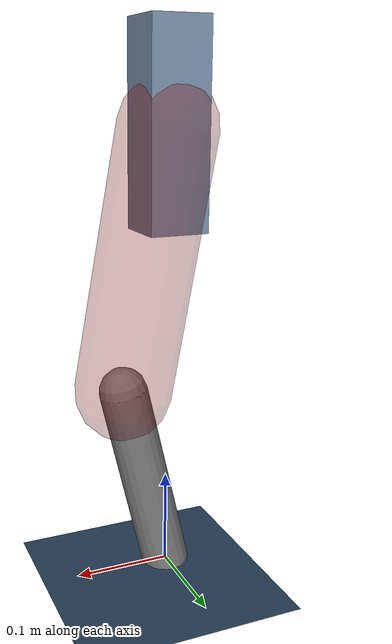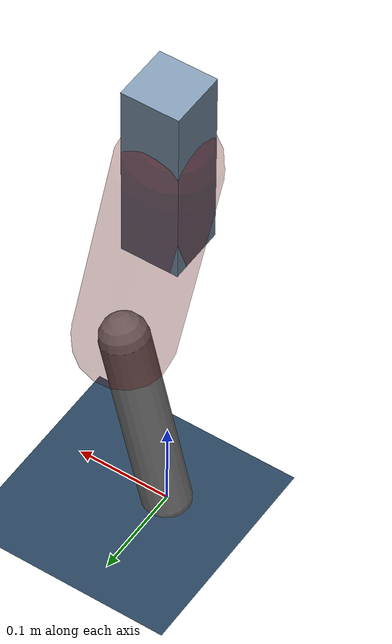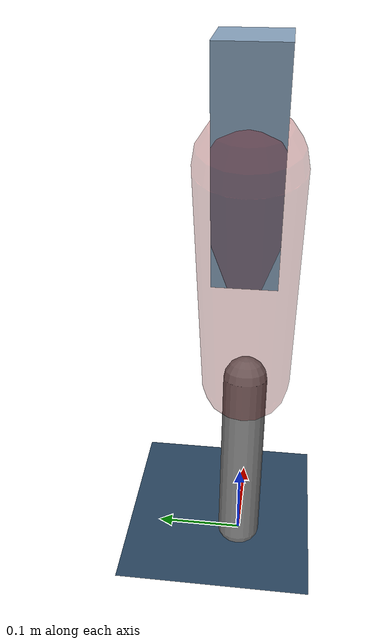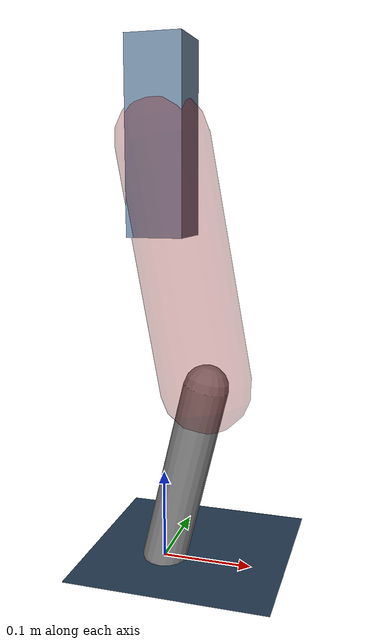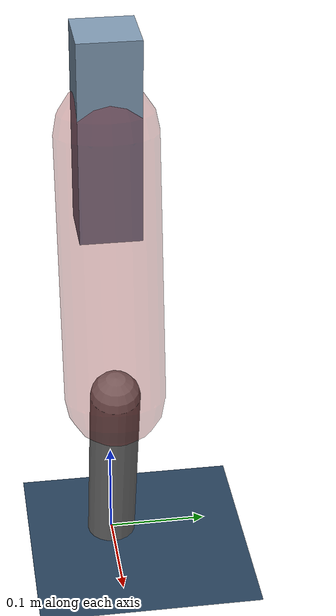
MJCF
<mujoco model="Hopper2D">
	<compiler inertiafromgeom="true" angle="radian" />
	<option timestep="0.001" integrator="implicit" cone="elliptic" solver="Newton" tolerance="1e-10" />

	<default>
		<geom contype="1" conaffinity="1" condim="3" friction="2 0.005 0.0001" solref="0.005 1" />
		<joint limited="true" damping="0.1" />
	</default>

	<asset>
		<texture name="skybox" type="skybox" builtin="gradient" rgb1=".4 .6 .8" rgb2="0 0 0" width="800" height="800" />
		<texture name="grid" type="2d" builtin="checker" rgb1=".1 .2 .3" rgb2=".2 .3 .4" width="300" height="300" mark="edge" markrgb=".2 .3 .4" />
		<material name="ground" texture="grid" texrepeat="1 1" texuniform="true" reflectance="0.1" />
		<material name="leg" rgba="0.5 0.6 0.7 1" />
	</asset>

	<worldbody>

		<geom name="floor" type="plane" size="5 5 0.25" material="ground" />

		<light directional="false" diffuse="0.8 0.8 0.8" specular="0.3 0.3 0.3" pos="0 0 2" dir="0 0 -1" />
		<light mode="targetbodycom" target="base" directional="false" diffuse="0.8 0.8 0.8" specular="0.3 0.3 0.3" pos="0 0 2" dir="0 0 -1" />

		<camera name="fixed" pos="0 -2 1" xyaxes="1 0 0 0 0 1" />
		<camera name="tracking" mode="trackcom" pos="0 -3 1" />

		<body name="root" pos="0 0 0.46408769527404803">
			<joint name="slide_x" type="slide" axis="1 0 0" range="-100 100" />
			<joint name="slide_z" type="slide" axis="0 0 1" range="0 10" />

			<body name="base" pos="0 0 0">
				<geom name="torso" type="box" size="0.03 0.03 0.1" mass="1.548" material="leg" />

				<body name="link1" pos="0 0 0" euler="0 1.3893157601182282 0">
					<joint type="hinge" axis="0 -1 0" pos="0 0 0" name="hinge1" limited="true" range="-3.14 3.14" stiffness="0" damping="0.1" />
					<geom name="thigh" type="capsule" fromto="0 0 0 0.2662025551052861 0 0" size="0.05" rgba="0.5 0 0 0.3" mass="0.8986468987842725" />

					<body name="link2" pos="0.2662025551052861 0 0" euler="0 0.4147064262318898 0">
						<joint type="hinge" axis="0 -1 0" pos="0 0 0" name="hinge2" limited="true" range="-3.14 3.14" stiffness="0" damping="0.1" />
						<geom name="shank" type="capsule" fromto="0 0 0 0.20788514016876192 0 0" size="0.025" mass="0.40750811213500954" />

					</body>
				</body>
			</body>
		</body>
	</worldbody>

	<actuator>
		<motor name="torque1" joint="hinge1" ctrlrange="-29.519820811639388 29.519820811639388" ctrllimited="true" gear="1" />
		<motor name="torque2" joint="hinge2" ctrlrange="-48.43108789089181 48.43108789089181" ctrllimited="true" gear="1" />
	</actuator>
</mujoco>
